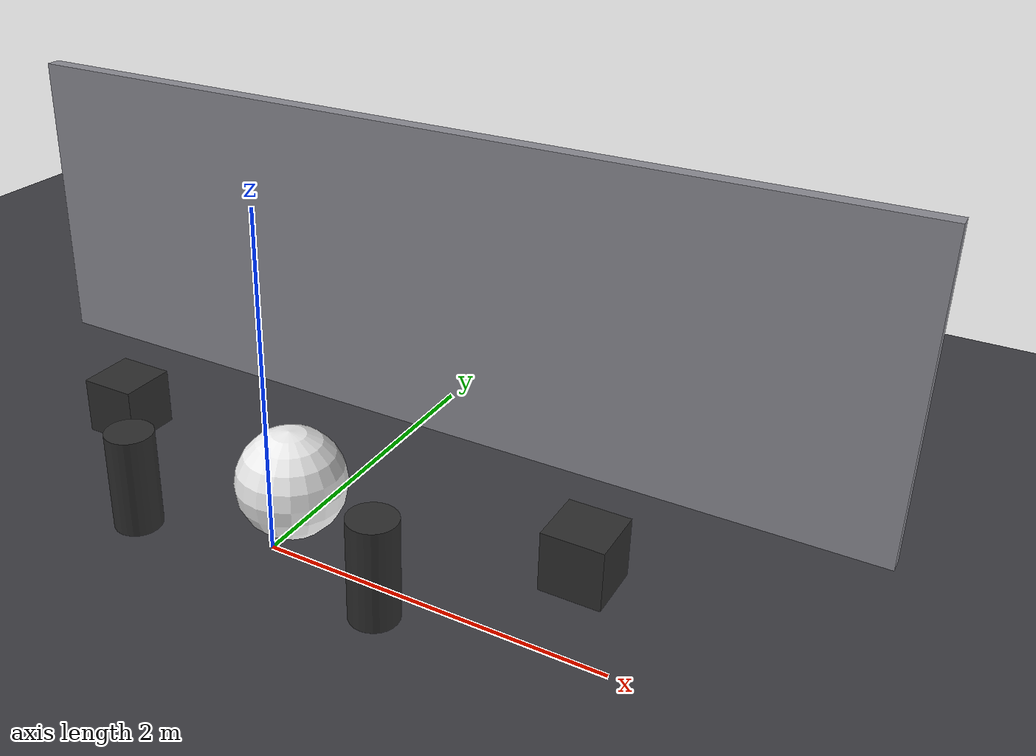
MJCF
<mujoco model="lighting">
  <asset>
    <texture name="floor_tex" type="2d" builtin="checker" width="512" height="512"
             rgb1="0.20 0.20 0.22" rgb2="0.28 0.28 0.30"/>

    <material name="floor" texture="floor_tex" texrepeat="8 8" texuniform="true"
              reflectance="0.3" roughness="0.2" metallic="0.1"/>
    <material name="wall"   rgba="0.55 0.55 0.58 1" roughness="0.85" metallic="0.0"/>
    <material name="chrome" rgba="0.95 0.95 0.95 1" roughness="0.10" metallic="0.95"/>
    <material name="rubber" rgba="0.18 0.18 0.18 1" roughness="0.85" metallic="0.0"/>
  </asset>

  <custom>
    <text name="filament.shadows.type" data="pcss"/>
  </custom>

  <worldbody>
    <camera name="default" pos="0 -2.8 1.2" xyaxes="1 0 0  0 0.30 1"/>

    <light pos="0 0 6" dir="0 0 -1" castshadow="true" directional="true" diffuse="0.5 0.6 0.85" intensity="3000"/>

    <light type="point" pos="-1.6 0 0.6" diffuse="1.0 0.30 0.30" intensity="120000" range="6" castshadow="true" bulbradius="0.050"/>
    <light type="point" pos=" 0.0 0.6 0.6" diffuse="0.30 1.0 0.40" intensity="120000" range="6" castshadow="true" bulbradius="0.050"/>
    <light type="point" pos=" 1.6 0 0.6" diffuse="0.30 0.55 1.0" intensity="120000" range="6" castshadow="true" bulbradius="0.050"/>

    <light type="spot" pos="-2.5 -2.5 2.5" dir="0.6 0.6 -0.55" diffuse="1.0 0.85 0.55" intensity="220000" range="8" castshadow="true" cutoff="22" bulbradius="1.00"/>

    <geom name="ground" type="plane" size="6 6 0.05" material="floor"/>
    <geom name="wall" type="box" pos="0 1.6 1.0" size="3 0.05 1.0" material="wall"/>
    <geom type="sphere" size="0.32" pos="0 0.2 0.32" material="chrome"/>
    <geom type="cylinder" size="0.14 0.30" pos="-0.8 -0.2 0.30" material="rubber"/>
    <geom type="cylinder" size="0.14 0.30" pos=" 0.8 -0.2 0.30" material="rubber"/>
    <geom type="box" size="0.18 0.18 0.18" pos="-1.6 0.6 0.18" material="rubber"/>
    <geom type="box" size="0.18 0.18 0.18" pos=" 1.6 0.6 0.18" material="rubber"/>

  </worldbody>

</mujoco>
